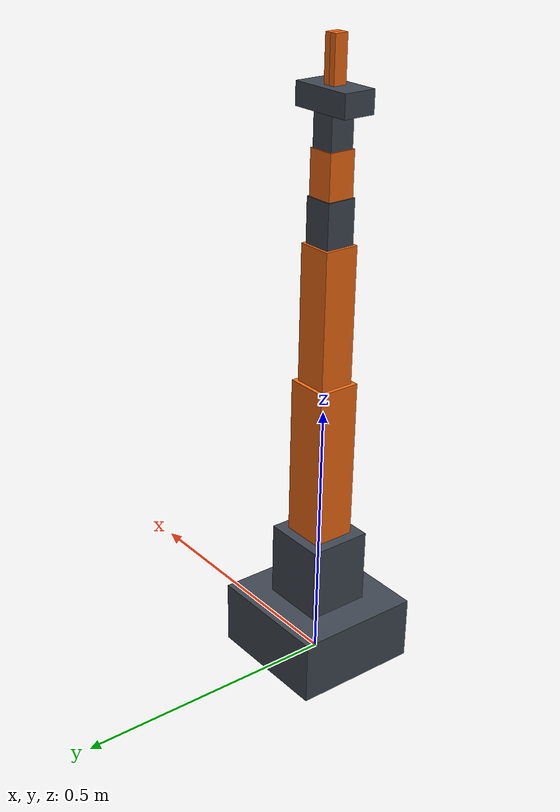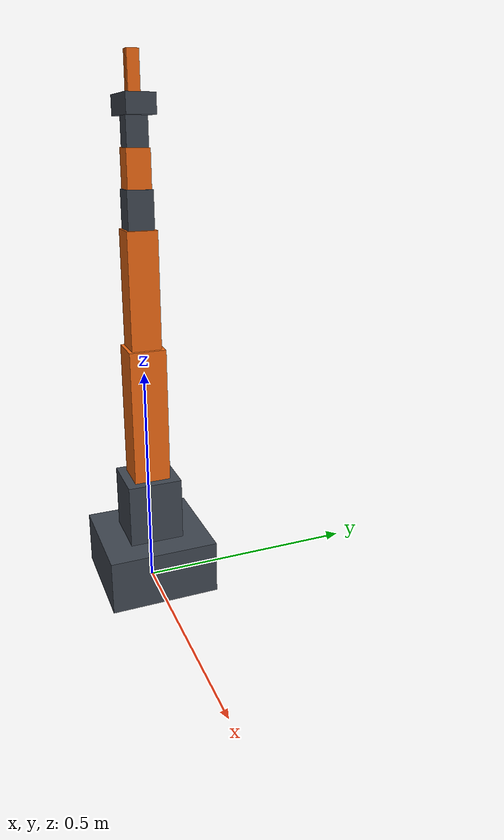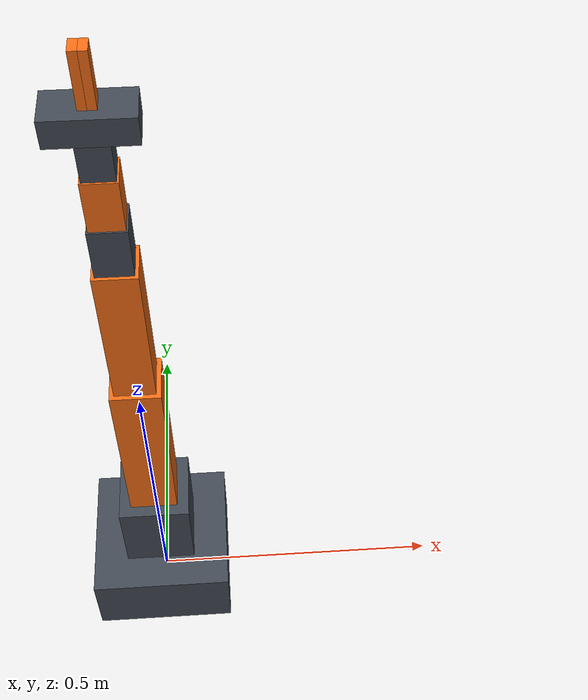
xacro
<?xml version="1.0"?>
<robot name="six_axis_arm" xmlns:xacro="http://www.ros.org/wiki/xacro">
  <xacro:arg name="sim" default="false"/>
  <xacro:arg name="controllers_file" default=""/>

  <xacro:property name="upper_length" value="0.30"/>
  <xacro:property name="fore_length" value="0.25"/>
  <xacro:property name="finger_travel" value="0.04"/>

  <material name="orange"><color rgba="0.95 0.42 0.08 1"/></material>
  <material name="gray"><color rgba="0.25 0.28 0.32 1"/></material>

  <!-- 盒形连杆：参考坐标系位于底面中心，沿局部 Z 轴延伸。 -->
  <xacro:macro name="box_link" params="name x y z mass color">
    <link name="${name}">
      <visual>
        <origin xyz="0 0 ${z/2}"/>
        <geometry><box size="${x} ${y} ${z}"/></geometry>
        <material name="${color}"/>
      </visual>
      <collision>
        <origin xyz="0 0 ${z/2}"/>
        <geometry><box size="${x} ${y} ${z}"/></geometry>
      </collision>
      <inertial>
        <origin xyz="0 0 ${z/2}"/>
        <mass value="${mass}"/>
        <inertia
          ixx="${mass*(y*y+z*z)/12}"
          iyy="${mass*(x*x+z*z)/12}"
          izz="${mass*(x*x+y*y)/12}"
          ixy="0" ixz="0" iyz="0"/>
      </inertial>
    </link>
  </xacro:macro>

  <xacro:macro name="rotation"
               params="name parent child z axis low high effort speed">
    <joint name="${name}" type="revolute">
      <parent link="${parent}"/>
      <child link="${child}"/>
      <origin xyz="0 0 ${z}" rpy="0 0 0"/>
      <axis xyz="${axis}"/>
      <limit lower="${low}" upper="${high}"
             effort="${effort}" velocity="${speed}"/>
      <dynamics damping="0.1" friction="0.02"/>
    </joint>
  </xacro:macro>

  <!-- 固定安装的机械臂。 -->
  <link name="world"/>
  <joint name="base_fixed" type="fixed">
    <parent link="world"/>
    <child link="base_link"/>
  </joint>

  <xacro:box_link name="base_link"
    x="0.24" y="0.24" z="0.12" mass="5" color="gray"/>
  <xacro:box_link name="shoulder_link"
    x="0.12" y="0.12" z="0.14" mass="2" color="gray"/>
  <xacro:box_link name="upper_arm_link"
    x="0.08" y="0.08" z="${upper_length}" mass="2" color="orange"/>
  <xacro:box_link name="forearm_link"
    x="0.065" y="0.065" z="${fore_length}" mass="1.5" color="orange"/>
  <xacro:box_link name="wrist_1_link"
    x="0.055" y="0.055" z="0.08" mass="0.4" color="gray"/>
  <xacro:box_link name="wrist_2_link"
    x="0.05" y="0.05" z="0.08" mass="0.3" color="orange"/>
  <xacro:box_link name="wrist_3_link"
    x="0.045" y="0.045" z="0.06" mass="0.2" color="gray"/>

  <!-- 六个旋转关节：Z-Y-Y-Z-Y-Z，轴均以关节局部坐标表示。 -->
  <xacro:rotation name="joint_1"
    parent="base_link" child="shoulder_link"
    z="0.12" axis="0 0 1"
    low="${-pi}" high="${pi}" effort="100" speed="1.5"/>

  <xacro:rotation name="joint_2"
    parent="shoulder_link" child="upper_arm_link"
    z="0.14" axis="0 1 0"
    low="${-pi/2}" high="${pi/2}" effort="100" speed="1.5"/>

  <xacro:rotation name="joint_3"
    parent="upper_arm_link" child="forearm_link"
    z="${upper_length}" axis="0 1 0"
    low="${-5*pi/6}" high="${5*pi/6}" effort="60" speed="1.5"/>

  <xacro:rotation name="joint_4"
    parent="forearm_link" child="wrist_1_link"
    z="${fore_length}" axis="0 0 1"
    low="${-pi}" high="${pi}" effort="20" speed="2"/>

  <xacro:rotation name="joint_5"
    parent="wrist_1_link" child="wrist_2_link"
    z="0.08" axis="0 1 0"
    low="${-2*pi/3}" high="${2*pi/3}" effort="20" speed="2"/>

  <xacro:rotation name="joint_6"
    parent="wrist_2_link" child="wrist_3_link"
    z="0.08" axis="0 0 1"
    low="${-pi}" high="${pi}" effort="10" speed="2"/>

  <!-- 末端安装法兰坐标系。 -->
  <link name="tool0"/>
  <joint name="tool_fixed" type="fixed">
    <parent link="wrist_3_link"/>
    <child link="tool0"/>
    <origin xyz="0 0 0.06"/>
  </joint>

  <!-- 夹爪掌部：120 × 60 × 40 mm。 -->
  <xacro:box_link name="gripper_base"
    x="0.12" y="0.06" z="0.04" mass="0.5" color="gray"/>
  <joint name="gripper_fixed" type="fixed">
    <parent link="tool0"/>
    <child link="gripper_base"/>
  </joint>

  <!-- 手指：厚 12 mm、宽 25 mm、长 80 mm。 -->
  <xacro:box_link name="left_finger"
    x="0.012" y="0.025" z="0.08" mass="0.08" color="orange"/>
  <xacro:box_link name="right_finger"
    x="0.012" y="0.025" z="0.08" mass="0.08" color="orange"/>

  <!-- q=0 时内侧面相接；开口宽度 = 2q。 -->
  <joint name="finger_joint" type="prismatic">
    <parent link="gripper_base"/>
    <child link="left_finger"/>
    <origin xyz="0.006 0 0.04"/>
    <axis xyz="1 0 0"/>
    <limit lower="0" upper="${finger_travel}"
           effort="30" velocity="0.05"/>
    <dynamics damping="1.0" friction="0.1"/>
  </joint>

  <!-- 两侧使用相同局部 X 轴，右指负位移实现对称开合。 -->
  <joint name="right_finger_joint" type="prismatic">
    <parent link="gripper_base"/>
    <child link="right_finger"/>
    <origin xyz="-0.006 0 0.04"/>
    <axis xyz="1 0 0"/>
    <limit lower="${-finger_travel}" upper="0"
           effort="30" velocity="0.05"/>
    <xacro:unless value="$(arg sim)">
      <mimic joint="finger_joint" multiplier="-1" offset="0"/>
    </xacro:unless>
    <dynamics damping="1.0" friction="0.1"/>
  </joint>

  <!-- 抓取参考点：位于两指之间、距指根 60 mm。 -->
  <link name="grasp_center"/>
  <joint name="grasp_center_fixed" type="fixed">
    <parent link="gripper_base"/>
    <child link="grasp_center"/>
    <origin xyz="0 0 0.10"/>
  </joint>

  <xacro:if value="$(arg sim)">
    <xacro:macro name="controlled_joint" params="name initial interface:=position">
      <joint name="${name}">
        <command_interface name="${interface}"/>
        <state_interface name="position"><param name="initial_value">${initial}</param></state_interface>
        <state_interface name="velocity"/>
      </joint>
    </xacro:macro>
    <ros2_control name="GazeboSimSystem" type="system">
      <hardware><plugin>gz_ros2_control/GazeboSimSystem</plugin></hardware>
      <xacro:controlled_joint name="joint_1" initial="0.0"/>
      <xacro:controlled_joint name="joint_2" initial="-0.45"/>
      <xacro:controlled_joint name="joint_3" initial="0.9"/>
      <xacro:controlled_joint name="joint_4" initial="0.0"/>
      <xacro:controlled_joint name="joint_5" initial="0.45"/>
      <xacro:controlled_joint name="joint_6" initial="0.0"/>
      <xacro:controlled_joint name="finger_joint" initial="0.0" interface="effort"/>
      <xacro:controlled_joint name="right_finger_joint" initial="0.0" interface="effort"/>
    </ros2_control>
    <gazebo>
      <plugin filename="libgz_ros2_control-system.so" name="gz_ros2_control::GazeboSimROS2ControlPlugin">
        <parameters>$(arg controllers_file)</parameters>
      </plugin>
    </gazebo>
    <gazebo reference="left_finger"><mu1>2.0</mu1><mu2>2.0</mu2></gazebo>
    <gazebo reference="right_finger">
      <mu1>2.0</mu1><mu2>2.0</mu2>
      <sensor name="right_contact" type="contact">
        <always_on>true</always_on><update_rate>50</update_rate>
        <topic>/gripper/right_contacts</topic>
        <contact><collision>right_finger_collision</collision></contact>
      </sensor>
    </gazebo>
  </xacro:if>
</robot>
